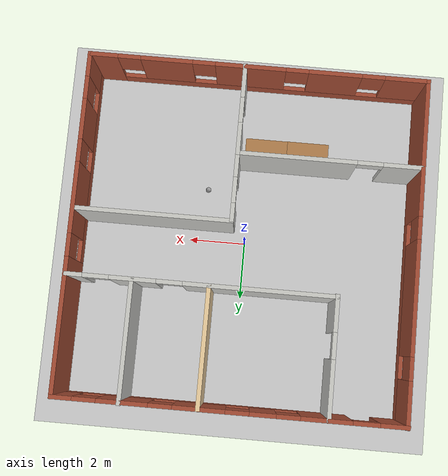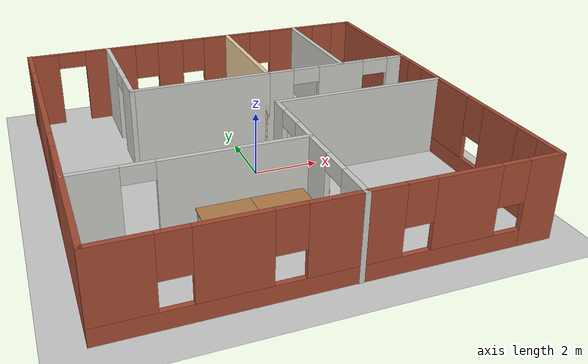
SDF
<sdf version="1.6">
 <world name="office">
  <model name="ground_plane">
   <static>1</static>
   <link name="link">
    <collision name="collision">
     <geometry><plane><normal>0 0 1</normal><size>100 100</size></plane></geometry>
     <surface><friction><ode><mu>100</mu><mu2>50</mu2></ode></friction></surface>
    </collision>
    <visual name="visual">
     <cast_shadows>0</cast_shadows>
     <geometry><plane><normal>0 0 1</normal><size>100 100</size></plane></geometry>
     <material>
      <script><uri>file://media/materials/scripts/gazebo.material</uri><name>Gazebo/Grey</name></script>
     </material>
    </visual>
   </link>
  </model>
  <model name="building">
   <pose>-0.00035 0.007797 0 0 -0 0</pose>
   <link name="Wall_0">
    <pose>-5.91755 0.003133 0 0 -0 1.5708</pose>
    <visual name="Wall_0_Visual_0">
     <pose>-3.58906 0 1.25 0 -0 0</pose>
     <geometry><box><size>4.82188 0.15 2.5</size></box></geometry>
     <material>
      <script><uri>file://media/materials/scripts/gazebo.material</uri><name>Gazebo/Bricks</name></script>
      <ambient>1 1 1 1</ambient>
     </material>
     <meta><layer>0</layer></meta>
    </visual>
    <collision name="Wall_0_Collision_0">
     <geometry><box><size>4.82188 0.15 2.5</size></box></geometry>
     <pose>-3.58906 0 1.25 0 -0 0</pose>
    </collision>
    <visual name="Wall_0_Visual_1">
     <pose>2.41094 0 0.25 0 -0 0</pose>
     <geometry><box><size>7.17812 0.15 0.5</size></box></geometry>
     <material>
      <script><uri>file://media/materials/scripts/gazebo.material</uri><name>Gazebo/Bricks</name></script>
      <ambient>1 1 1 1</ambient>
     </material>
     <meta><layer>0</layer></meta>
    </visual>
    <collision name="Wall_0_Collision_1">
     <geometry><box><size>7.17812 0.15 0.5</size></box></geometry>
     <pose>2.41094 0 0.25 0 -0 0</pose>
    </collision>
    <visual name="Wall_0_Visual_2">
     <pose>1.60287 0 1.5 0 -0 0</pose>
     <geometry><box><size>3.96196 0.15 2</size></box></geometry>
     <material>
      <script><uri>file://media/materials/scripts/gazebo.material</uri><name>Gazebo/Bricks</name></script>
      <ambient>1 1 1 1</ambient>
     </material>
     <meta><layer>0</layer></meta>
    </visual>
    <collision name="Wall_0_Collision_2">
     <geometry><box><size>3.96196 0.15 2</size></box></geometry>
     <pose>1.60287 0 1.5 0 -0 0</pose>
    </collision>
    <visual name="Wall_0_Visual_3">
     <pose>5.19192 0 1.5 0 -0 0</pose>
     <geometry><box><size>1.61615 0.15 2</size></box></geometry>
     <material>
      <script><uri>file://media/materials/scripts/gazebo.material</uri><name>Gazebo/Bricks</name></script>
      <ambient>1 1 1 1</ambient>
     </material>
     <meta><layer>0</layer></meta>
    </visual>
    <collision name="Wall_0_Collision_3">
     <geometry><box><size>1.61615 0.15 2</size></box></geometry>
     <pose>5.19192 0 1.5 0 -0 0</pose>
    </collision>
    <visual name="Wall_0_Visual_4">
     <pose>-0.778116 0 1.9 0 -0 0</pose>
     <geometry><box><size>0.8 0.15 1.2</size></box></geometry>
     <material>
      <script><uri>file://media/materials/scripts/gazebo.material</uri><name>Gazebo/Bricks</name></script>
      <ambient>1 1 1 1</ambient>
     </material>
     <meta><layer>0</layer></meta>
    </visual>
    <collision name="Wall_0_Collision_4">
     <geometry><box><size>0.8 0.15 1.2</size></box></geometry>
     <pose>-0.778116 0 1.9 0 -0 0</pose>
    </collision>
    <visual name="Wall_0_Visual_5">
     <pose>3.98385 0 1.9 0 -0 0</pose>
     <geometry><box><size>0.8 0.15 1.2</size></box></geometry>
     <material>
      <script><uri>file://media/materials/scripts/gazebo.material</uri><name>Gazebo/Bricks</name></script>
      <ambient>1 1 1 1</ambient>
     </material>
     <meta><layer>0</layer></meta>
    </visual>
    <collision name="Wall_0_Collision_5">
     <geometry><box><size>0.8 0.15 1.2</size></box></geometry>
     <pose>3.98385 0 1.9 0 -0 0</pose>
    </collision>
   </link>
   <link name="Wall_10">
    <collision name="Wall_10_Collision">
     <geometry><box><size>4.48462 0.15 2.5</size></box></geometry>
     <pose>0 0 1.25 0 -0 0</pose>
    </collision>
    <visual name="Wall_10_Visual">
     <pose>0 0 1.25 0 -0 0</pose>
     <geometry><box><size>4.48462 0.15 2.5</size></box></geometry>
     <material>
      <script><uri>file://media/materials/scripts/gazebo.material</uri><name>Gazebo/CeilingTiled</name></script>
      <ambient>0.921569 0.807843 0.615686 1</ambient>
     </material>
     <meta><layer>0</layer></meta>
    </visual>
    <pose>-1.11979 1.80988 0 0 -0 0</pose>
   </link>
   <link name="Wall_11">
    <collision name="Wall_11_Collision">
     <geometry><box><size>4.25 0.15 2.5</size></box></geometry>
     <pose>0 0 1.25 0 -0 0</pose>
    </collision>
    <visual name="Wall_11_Visual">
     <pose>0 0 1.25 0 -0 0</pose>
     <geometry><box><size>4.25 0.15 2.5</size></box></geometry>
     <material>
      <script><uri>file://media/materials/scripts/gazebo.material</uri><name>Gazebo/Grey</name></script>
      <ambient>0.921569 0.807843 0.615686 1</ambient>
     </material>
     <meta><layer>0</layer></meta>
    </visual>
    <pose>1.04751 3.85988 0 0 -0 1.5708</pose>
   </link>
   <link name="Wall_15">
    <pose>3.47252 1.80988 0 0 -0 0</pose>
    <visual name="Wall_15_Visual_0">
     <pose>-2.01342 0 1.25 0 -0 0</pose>
     <geometry><box><size>0.973156 0.15 2.5</size></box></geometry>
     <material>
      <script><uri>file://media/materials/scripts/gazebo.material</uri><name>Gazebo/CeilingTiled</name></script>
      <ambient>0.996078 0.47451 0.0196078 1</ambient>
     </material>
     <meta><layer>0</layer></meta>
    </visual>
    <collision name="Wall_15_Collision_0">
     <geometry><box><size>0.973156 0.15 2.5</size></box></geometry>
     <pose>-2.01342 0 1.25 0 -0 0</pose>
    </collision>
    <visual name="Wall_15_Visual_1">
     <pose>0.174229 0 1.25 0 -0 0</pose>
     <geometry><box><size>1.60215 0.15 2.5</size></box></geometry>
     <material>
      <script><uri>file://media/materials/scripts/gazebo.material</uri><name>Gazebo/CeilingTiled</name></script>
      <ambient>0.996078 0.47451 0.0196078 1</ambient>
     </material>
     <meta><layer>0</layer></meta>
    </visual>
    <collision name="Wall_15_Collision_1">
     <geometry><box><size>1.60215 0.15 2.5</size></box></geometry>
     <pose>0.174229 0 1.25 0 -0 0</pose>
    </collision>
    <visual name="Wall_15_Visual_2">
     <pose>2.18765 0 1.25 0 -0 0</pose>
     <geometry><box><size>0.624697 0.15 2.5</size></box></geometry>
     <material>
      <script><uri>file://media/materials/scripts/gazebo.material</uri><name>Gazebo/CeilingTiled</name></script>
      <ambient>0.996078 0.47451 0.0196078 1</ambient>
     </material>
     <meta><layer>0</layer></meta>
    </visual>
    <collision name="Wall_15_Collision_2">
     <geometry><box><size>0.624697 0.15 2.5</size></box></geometry>
     <pose>2.18765 0 1.25 0 -0 0</pose>
    </collision>
    <visual name="Wall_15_Visual_3">
     <pose>-1.07684 0 2.25 0 -0 0</pose>
     <geometry><box><size>0.9 0.15 0.5</size></box></geometry>
     <material>
      <script><uri>file://media/materials/scripts/gazebo.material</uri><name>Gazebo/CeilingTiled</name></script>
      <ambient>0.996078 0.47451 0.0196078 1</ambient>
     </material>
     <meta><layer>0</layer></meta>
    </visual>
    <collision name="Wall_15_Collision_3">
     <geometry><box><size>0.9 0.15 0.5</size></box></geometry>
     <pose>-1.07684 0 2.25 0 -0 0</pose>
    </collision>
    <visual name="Wall_15_Visual_4">
     <pose>1.4253 0 2.25 0 -0 0</pose>
     <geometry><box><size>0.9 0.15 0.5</size></box></geometry>
     <material>
      <script><uri>file://media/materials/scripts/gazebo.material</uri><name>Gazebo/CeilingTiled</name></script>
      <ambient>0.996078 0.47451 0.0196078 1</ambient>
     </material>
     <meta><layer>0</layer></meta>
    </visual>
    <collision name="Wall_15_Collision_4">
     <geometry><box><size>0.9 0.15 0.5</size></box></geometry>
     <pose>1.4253 0 2.25 0 -0 0</pose>
    </collision>
   </link>
   <link name="Wall_17">
    <collision name="Wall_17_Collision">
     <geometry><box><size>4.25 0.15 2.5</size></box></geometry>
     <pose>0 0 1.25 0 -0 0</pose>
    </collision>
    <visual name="Wall_17_Visual">
     <pose>0 0 1.25 0 -0 0</pose>
     <geometry><box><size>4.25 0.15 2.5</size></box></geometry>
     <material>
      <script><uri>file://media/materials/scripts/gazebo.material</uri><name>Gazebo/CeilingTiled</name></script>
      <ambient>0.996078 0.47451 0.0196078 1</ambient>
     </material>
     <meta><layer>0</layer></meta>
    </visual>
    <pose>3.6718 3.89596 0 0 0 -1.5708</pose>
   </link>
   <link name="Wall_2">
    <pose>0 5.91836 0 0 -0 0.000595</pose>
    <visual name="Wall_2_Visual_0">
     <pose>-5.50579 0 1.25 0 -0 0</pose>
     <geometry><box><size>1.00011 0.15 2.5</size></box></geometry>
     <material>
      <script><uri>file://media/materials/scripts/gazebo.material</uri><name>Gazebo/Bricks</name></script>
      <ambient>0.921569 0.807843 0.615686 1</ambient>
     </material>
     <meta><layer>0</layer></meta>
    </visual>
    <collision name="Wall_2_Collision_0">
     <geometry><box><size>1.00011 0.15 2.5</size></box></geometry>
     <pose>-5.50579 0 1.25 0 -0 0</pose>
    </collision>
    <visual name="Wall_2_Visual_1">
     <pose>-3.235 0 1.25 0 -0 0</pose>
     <geometry><box><size>1.74147 0.15 2.5</size></box></geometry>
     <material>
      <script><uri>file://media/materials/scripts/gazebo.material</uri><name>Gazebo/Bricks</name></script>
      <ambient>0.921569 0.807843 0.615686 1</ambient>
     </material>
     <meta><layer>0</layer></meta>
    </visual>
    <collision name="Wall_2_Collision_1">
     <geometry><box><size>1.74147 0.15 2.5</size></box></geometry>
     <pose>-3.235 0 1.25 0 -0 0</pose>
    </collision>
    <visual name="Wall_2_Visual_2">
     <pose>1.82079 0 0.25 0 -0 0</pose>
     <geometry><box><size>8.37012 0.15 0.5</size></box></geometry>
     <material>
      <script><uri>file://media/materials/scripts/gazebo.material</uri><name>Gazebo/Bricks</name></script>
      <ambient>0.921569 0.807843 0.615686 1</ambient>
     </material>
     <meta><layer>0</layer></meta>
    </visual>
    <collision name="Wall_2_Collision_2">
     <geometry><box><size>8.37012 0.15 0.5</size></box></geometry>
     <pose>1.82079 0 0.25 0 -0 0</pose>
    </collision>
    <visual name="Wall_2_Visual_3">
     <pose>-1.1134 0 1.5 0 -0 0</pose>
     <geometry><box><size>0.901735 0.15 2</size></box></geometry>
     <material>
      <script><uri>file://media/materials/scripts/gazebo.material</uri><name>Gazebo/Bricks</name></script>
      <ambient>0.921569 0.807843 0.615686 1</ambient>
     </material>
     <meta><layer>0</layer></meta>
    </visual>
    <collision name="Wall_2_Collision_3">
     <geometry><box><size>0.901735 0.15 2</size></box></geometry>
     <pose>-1.1134 0 1.5 0 -0 0</pose>
    </collision>
    <visual name="Wall_2_Visual_4">
     <pose>1.02146 0 1.5 0 -0 0</pose>
     <geometry><box><size>1.76798 0.15 2</size></box></geometry>
     <material>
      <script><uri>file://media/materials/scripts/gazebo.material</uri><name>Gazebo/Bricks</name></script>
      <ambient>0.921569 0.807843 0.615686 1</ambient>
     </material>
     <meta><layer>0</layer></meta>
    </visual>
    <collision name="Wall_2_Collision_4">
     <geometry><box><size>1.76798 0.15 2</size></box></geometry>
     <pose>1.02146 0 1.5 0 -0 0</pose>
    </collision>
    <visual name="Wall_2_Visual_5">
     <pose>3.57391 0 1.5 0 -0 0</pose>
     <geometry><box><size>1.73691 0.15 2</size></box></geometry>
     <material>
      <script><uri>file://media/materials/scripts/gazebo.material</uri><name>Gazebo/Bricks</name></script>
      <ambient>0.921569 0.807843 0.615686 1</ambient>
     </material>
     <meta><layer>0</layer></meta>
    </visual>
    <collision name="Wall_2_Collision_5">
     <geometry><box><size>1.73691 0.15 2</size></box></geometry>
     <pose>3.57391 0 1.5 0 -0 0</pose>
    </collision>
    <visual name="Wall_2_Visual_6">
     <pose>5.62411 0 1.5 0 -0 0</pose>
     <geometry><box><size>0.763489 0.15 2</size></box></geometry>
     <material>
      <script><uri>file://media/materials/scripts/gazebo.material</uri><name>Gazebo/Bricks</name></script>
      <ambient>0.921569 0.807843 0.615686 1</ambient>
     </material>
     <meta><layer>0</layer></meta>
    </visual>
    <collision name="Wall_2_Collision_6">
     <geometry><box><size>0.763489 0.15 2</size></box></geometry>
     <pose>5.62411 0 1.5 0 -0 0</pose>
    </collision>
    <visual name="Wall_2_Visual_7">
     <pose>-1.96426 0 1.9 0 -0 0</pose>
     <geometry><box><size>0.8 0.15 1.2</size></box></geometry>
     <material>
      <script><uri>file://media/materials/scripts/gazebo.material</uri><name>Gazebo/Bricks</name></script>
      <ambient>0.921569 0.807843 0.615686 1</ambient>
     </material>
     <meta><layer>0</layer></meta>
    </visual>
    <collision name="Wall_2_Collision_7">
     <geometry><box><size>0.8 0.15 1.2</size></box></geometry>
     <pose>-1.96426 0 1.9 0 -0 0</pose>
    </collision>
    <visual name="Wall_2_Visual_8">
     <pose>-0.26253 0 1.9 0 -0 0</pose>
     <geometry><box><size>0.8 0.15 1.2</size></box></geometry>
     <material>
      <script><uri>file://media/materials/scripts/gazebo.material</uri><name>Gazebo/Bricks</name></script>
      <ambient>0.921569 0.807843 0.615686 1</ambient>
     </material>
     <meta><layer>0</layer></meta>
    </visual>
    <collision name="Wall_2_Collision_8">
     <geometry><box><size>0.8 0.15 1.2</size></box></geometry>
     <pose>-0.26253 0 1.9 0 -0 0</pose>
    </collision>
    <visual name="Wall_2_Visual_9">
     <pose>2.30545 0 1.9 0 -0 0</pose>
     <geometry><box><size>0.8 0.15 1.2</size></box></geometry>
     <material>
      <script><uri>file://media/materials/scripts/gazebo.material</uri><name>Gazebo/Bricks</name></script>
      <ambient>0.921569 0.807843 0.615686 1</ambient>
     </material>
     <meta><layer>0</layer></meta>
    </visual>
    <collision name="Wall_2_Collision_9">
     <geometry><box><size>0.8 0.15 1.2</size></box></geometry>
     <pose>2.30545 0 1.9 0 -0 0</pose>
    </collision>
    <visual name="Wall_2_Visual_10">
     <pose>4.84236 0 1.9 0 -0 0</pose>
     <geometry><box><size>0.8 0.15 1.2</size></box></geometry>
     <material>
      <script><uri>file://media/materials/scripts/gazebo.material</uri><name>Gazebo/Bricks</name></script>
      <ambient>0.921569 0.807843 0.615686 1</ambient>
     </material>
     <meta><layer>0</layer></meta>
    </visual>
    <collision name="Wall_2_Collision_10">
     <geometry><box><size>0.8 0.15 1.2</size></box></geometry>
     <pose>4.84236 0 1.9 0 -0 0</pose>
    </collision>
    <visual name="Wall_2_Visual_11">
     <pose>-4.55574 0 2.25 0 -0 0</pose>
     <geometry><box><size>0.9 0.15 0.5</size></box></geometry>
     <material>
      <script><uri>file://media/materials/scripts/gazebo.material</uri><name>Gazebo/Bricks</name></script>
      <ambient>0.921569 0.807843 0.615686 1</ambient>
     </material>
     <meta><layer>0</layer></meta>
    </visual>
    <collision name="Wall_2_Collision_11">
     <geometry><box><size>0.9 0.15 0.5</size></box></geometry>
     <pose>-4.55574 0 2.25 0 -0 0</pose>
    </collision>
   </link>
   <link name="Wall_20">
    <pose>-2.69192 -2.84596 0 0 -0 0</pose>
    <visual name="Wall_20_Visual_0">
     <pose>-2.55329 0 1.25 0 -0 0</pose>
     <geometry><box><size>1.39341 0.15 2.5</size></box></geometry>
     <material>
      <script><uri>file://media/materials/scripts/gazebo.material</uri><name>Gazebo/CeilingTiled</name></script>
      <ambient>1 0.764706 0.305882 1</ambient>
     </material>
     <meta><layer>0</layer></meta>
    </visual>
    <collision name="Wall_20_Collision_0">
     <geometry><box><size>1.39341 0.15 2.5</size></box></geometry>
     <pose>-2.55329 0 1.25 0 -0 0</pose>
    </collision>
    <visual name="Wall_20_Visual_1">
     <pose>1.14671 0 1.25 0 -0 0</pose>
     <geometry><box><size>4.20659 0.15 2.5</size></box></geometry>
     <material>
      <script><uri>file://media/materials/scripts/gazebo.material</uri><name>Gazebo/CeilingTiled</name></script>
      <ambient>1 0.764706 0.305882 1</ambient>
     </material>
     <meta><layer>0</layer></meta>
    </visual>
    <collision name="Wall_20_Collision_1">
     <geometry><box><size>4.20659 0.15 2.5</size></box></geometry>
     <pose>1.14671 0 1.25 0 -0 0</pose>
    </collision>
    <visual name="Wall_20_Visual_2">
     <pose>-1.40659 0 2.25 0 -0 0</pose>
     <geometry><box><size>0.9 0.15 0.5</size></box></geometry>
     <material>
      <script><uri>file://media/materials/scripts/gazebo.material</uri><name>Gazebo/CeilingTiled</name></script>
      <ambient>1 0.764706 0.305882 1</ambient>
     </material>
     <meta><layer>0</layer></meta>
    </visual>
    <collision name="Wall_20_Collision_2">
     <geometry><box><size>0.9 0.15 0.5</size></box></geometry>
     <pose>-1.40659 0 2.25 0 -0 0</pose>
    </collision>
   </link>
   <link name="Wall_21">
    <pose>0.483078 -4.39596 0 0 0 -1.5708</pose>
    <visual name="Wall_21_Visual_0">
     <pose>-1.05225 0 1.25 0 -0 0</pose>
     <geometry><box><size>1.14549 0.15 2.5</size></box></geometry>
     <material>
      <script><uri>file://media/materials/scripts/gazebo.material</uri><name>Gazebo/CeilingTiled</name></script>
      <ambient>0.435294 0.796078 0.67451 1</ambient>
     </material>
     <meta><layer>0</layer></meta>
    </visual>
    <collision name="Wall_21_Collision_0">
     <geometry><box><size>1.14549 0.15 2.5</size></box></geometry>
     <pose>-1.05225 0 1.25 0 -0 0</pose>
    </collision>
    <visual name="Wall_21_Visual_1">
     <pose>1.02275 0 1.25 0 -0 0</pose>
     <geometry><box><size>1.20451 0.15 2.5</size></box></geometry>
     <material>
      <script><uri>file://media/materials/scripts/gazebo.material</uri><name>Gazebo/CeilingTiled</name></script>
      <ambient>0.435294 0.796078 0.67451 1</ambient>
     </material>
     <meta><layer>0</layer></meta>
    </visual>
    <collision name="Wall_21_Collision_1">
     <geometry><box><size>1.20451 0.15 2.5</size></box></geometry>
     <pose>1.02275 0 1.25 0 -0 0</pose>
    </collision>
    <visual name="Wall_21_Visual_2">
     <pose>-0.029508 0 2.25 0 -0 0</pose>
     <geometry><box><size>0.9 0.15 0.5</size></box></geometry>
     <material>
      <script><uri>file://media/materials/scripts/gazebo.material</uri><name>Gazebo/CeilingTiled</name></script>
      <ambient>0.435294 0.796078 0.67451 1</ambient>
     </material>
     <meta><layer>0</layer></meta>
    </visual>
    <collision name="Wall_21_Collision_2">
     <geometry><box><size>0.9 0.15 0.5</size></box></geometry>
     <pose>-0.029508 0 2.25 0 -0 0</pose>
    </collision>
   </link>
   <link name="Wall_23">
    <collision name="Wall_23_Collision">
     <geometry><box><size>5.5 0.15 2.5</size></box></geometry>
     <pose>0 0 1.25 0 -0 0</pose>
    </collision>
    <visual name="Wall_23_Visual">
     <pose>0 0 1.25 0 -0 0</pose>
     <geometry><box><size>5.5 0.15 2.5</size></box></geometry>
     <material>
      <script><uri>file://media/materials/scripts/gazebo.material</uri><name>Gazebo/CeilingTiled</name></script>
      <ambient>0.435294 0.796078 0.67451 1</ambient>
     </material>
     <meta><layer>0</layer></meta>
    </visual>
    <pose>3.17532 -0.459711 0 0 -0 3.14159</pose>
   </link>
   <link name="Wall_25">
    <pose>0.483078 -1.67096 0 0 -0 1.5708</pose>
    <visual name="Wall_25_Visual_0">
     <pose>-0.782101 0 1.25 0 -0 0</pose>
     <geometry><box><size>0.935797 0.15 2.5</size></box></geometry>
     <material>
      <script><uri>file://media/materials/scripts/gazebo.material</uri><name>Gazebo/CeilingTiled</name></script>
      <ambient>0.435294 0.796078 0.67451 1</ambient>
     </material>
     <meta><layer>0</layer></meta>
    </visual>
    <collision name="Wall_25_Collision_0">
     <geometry><box><size>0.935797 0.15 2.5</size></box></geometry>
     <pose>-0.782101 0 1.25 0 -0 0</pose>
    </collision>
    <visual name="Wall_25_Visual_1">
     <pose>0.917899 0 1.25 0 -0 0</pose>
     <geometry><box><size>0.664203 0.15 2.5</size></box></geometry>
     <material>
      <script><uri>file://media/materials/scripts/gazebo.material</uri><name>Gazebo/CeilingTiled</name></script>
      <ambient>0.435294 0.796078 0.67451 1</ambient>
     </material>
     <meta><layer>0</layer></meta>
    </visual>
    <collision name="Wall_25_Collision_1">
     <geometry><box><size>0.664203 0.15 2.5</size></box></geometry>
     <pose>0.917899 0 1.25 0 -0 0</pose>
    </collision>
    <visual name="Wall_25_Visual_2">
     <pose>0.135797 0 2.25 0 -0 0</pose>
     <geometry><box><size>0.9 0.15 0.5</size></box></geometry>
     <material>
      <script><uri>file://media/materials/scripts/gazebo.material</uri><name>Gazebo/CeilingTiled</name></script>
      <ambient>0.435294 0.796078 0.67451 1</ambient>
     </material>
     <meta><layer>0</layer></meta>
    </visual>
    <collision name="Wall_25_Collision_2">
     <geometry><box><size>0.9 0.15 0.5</size></box></geometry>
     <pose>0.135797 0 2.25 0 -0 0</pose>
    </collision>
   </link>
   <link name="Wall_3">
    <pose>5.93085 -0.003114 0 0 0 -1.5708</pose>
    <visual name="Wall_3_Visual_0">
     <pose>-3.61577 0 1.25 0 -0 0</pose>
     <geometry><box><size>4.76845 0.15 2.5</size></box></geometry>
     <material>
      <script><uri>file://media/materials/scripts/gazebo.material</uri><name>Gazebo/Bricks</name></script>
      <ambient>1 1 1 1</ambient>
     </material>
     <meta><layer>0</layer></meta>
    </visual>
    <collision name="Wall_3_Collision_0">
     <geometry><box><size>4.76845 0.15 2.5</size></box></geometry>
     <pose>-3.61577 0 1.25 0 -0 0</pose>
    </collision>
    <visual name="Wall_3_Visual_1">
     <pose>2.38423 0 0.25 0 -0 0</pose>
     <geometry><box><size>7.23155 0.15 0.5</size></box></geometry>
     <material>
      <script><uri>file://media/materials/scripts/gazebo.material</uri><name>Gazebo/Bricks</name></script>
      <ambient>1 1 1 1</ambient>
     </material>
     <meta><layer>0</layer></meta>
    </visual>
    <collision name="Wall_3_Collision_1">
     <geometry><box><size>7.23155 0.15 0.5</size></box></geometry>
     <pose>2.38423 0 0.25 0 -0 0</pose>
    </collision>
    <visual name="Wall_3_Visual_2">
     <pose>0.812347 0 1.5 0 -0 0</pose>
     <geometry><box><size>2.48779 0.15 2</size></box></geometry>
     <material>
      <script><uri>file://media/materials/scripts/gazebo.material</uri><name>Gazebo/Bricks</name></script>
      <ambient>1 1 1 1</ambient>
     </material>
     <meta><layer>0</layer></meta>
    </visual>
    <collision name="Wall_3_Collision_2">
     <geometry><box><size>2.48779 0.15 2</size></box></geometry>
     <pose>0.812347 0 1.5 0 -0 0</pose>
    </collision>
    <visual name="Wall_3_Visual_3">
     <pose>3.57916 0 1.5 0 -0 0</pose>
     <geometry><box><size>1.44583 0.15 2</size></box></geometry>
     <material>
      <script><uri>file://media/materials/scripts/gazebo.material</uri><name>Gazebo/Bricks</name></script>
      <ambient>1 1 1 1</ambient>
     </material>
     <meta><layer>0</layer></meta>
    </visual>
    <collision name="Wall_3_Collision_3">
     <geometry><box><size>1.44583 0.15 2</size></box></geometry>
     <pose>3.57916 0 1.5 0 -0 0</pose>
    </collision>
    <visual name="Wall_3_Visual_4">
     <pose>5.55103 0 1.5 0 -0 0</pose>
     <geometry><box><size>0.89793 0.15 2</size></box></geometry>
     <material>
      <script><uri>file://media/materials/scripts/gazebo.material</uri><name>Gazebo/Bricks</name></script>
      <ambient>1 1 1 1</ambient>
     </material>
     <meta><layer>0</layer></meta>
    </visual>
    <collision name="Wall_3_Collision_4">
     <geometry><box><size>0.89793 0.15 2</size></box></geometry>
     <pose>5.55103 0 1.5 0 -0 0</pose>
    </collision>
    <visual name="Wall_3_Visual_5">
     <pose>-0.831546 0 1.9 0 -0 0</pose>
     <geometry><box><size>0.8 0.15 1.2</size></box></geometry>
     <material>
      <script><uri>file://media/materials/scripts/gazebo.material</uri><name>Gazebo/Bricks</name></script>
      <ambient>1 1 1 1</ambient>
     </material>
     <meta><layer>0</layer></meta>
    </visual>
    <collision name="Wall_3_Collision_5">
     <geometry><box><size>0.8 0.15 1.2</size></box></geometry>
     <pose>-0.831546 0 1.9 0 -0 0</pose>
    </collision>
    <visual name="Wall_3_Visual_6">
     <pose>2.45624 0 1.9 0 -0 0</pose>
     <geometry><box><size>0.8 0.15 1.2</size></box></geometry>
     <material>
      <script><uri>file://media/materials/scripts/gazebo.material</uri><name>Gazebo/Bricks</name></script>
      <ambient>1 1 1 1</ambient>
     </material>
     <meta><layer>0</layer></meta>
    </visual>
    <collision name="Wall_3_Collision_6">
     <geometry><box><size>0.8 0.15 1.2</size></box></geometry>
     <pose>2.45624 0 1.9 0 -0 0</pose>
    </collision>
    <visual name="Wall_3_Visual_7">
     <pose>4.70207 0 1.9 0 -0 0</pose>
     <geometry><box><size>0.8 0.15 1.2</size></box></geometry>
     <material>
      <script><uri>file://media/materials/scripts/gazebo.material</uri><name>Gazebo/Bricks</name></script>
      <ambient>1 1 1 1</ambient>
     </material>
     <meta><layer>0</layer></meta>
    </visual>
    <collision name="Wall_3_Collision_7">
     <geometry><box><size>0.8 0.15 1.2</size></box></geometry>
     <pose>4.70207 0 1.9 0 -0 0</pose>
    </collision>
   </link>
   <link name="Wall_4">
    <pose>0.00585 -5.92811 0 0 -0 3.14159</pose>
    <visual name="Wall_4_Visual_0">
     <pose>-5.4743 0 1.25 0 -0 0</pose>
     <geometry><box><size>1.05139 0.15 2.5</size></box></geometry>
     <material>
      <script><uri>file://media/materials/scripts/gazebo.material</uri><name>Gazebo/Bricks</name></script>
      <ambient>1 1 1 1</ambient>
     </material>
     <meta><layer>0</layer></meta>
    </visual>
    <collision name="Wall_4_Collision_0">
     <geometry><box><size>1.05139 0.15 2.5</size></box></geometry>
     <pose>-5.4743 0 1.25 0 -0 0</pose>
    </collision>
    <visual name="Wall_4_Visual_1">
     <pose>0.525697 0 0.25 0 -0 0</pose>
     <geometry><box><size>10.9486 0.15 0.5</size></box></geometry>
     <material>
      <script><uri>file://media/materials/scripts/gazebo.material</uri><name>Gazebo/Bricks</name></script>
      <ambient>1 1 1 1</ambient>
     </material>
     <meta><layer>0</layer></meta>
    </visual>
    <collision name="Wall_4_Collision_1">
     <geometry><box><size>10.9486 0.15 0.5</size></box></geometry>
     <pose>0.525697 0 0.25 0 -0 0</pose>
    </collision>
    <visual name="Wall_4_Visual_2">
     <pose>-3.23854 0 1.5 0 -0 0</pose>
     <geometry><box><size>1.82013 0.15 2</size></box></geometry>
     <material>
      <script><uri>file://media/materials/scripts/gazebo.material</uri><name>Gazebo/Bricks</name></script>
      <ambient>1 1 1 1</ambient>
     </material>
     <meta><layer>0</layer></meta>
    </visual>
    <collision name="Wall_4_Collision_2">
     <geometry><box><size>1.82013 0.15 2</size></box></geometry>
     <pose>-3.23854 0 1.5 0 -0 0</pose>
    </collision>
    <visual name="Wall_4_Visual_3">
     <pose>-0.290889 0 1.5 0 -0 0</pose>
     <geometry><box><size>2.47517 0.15 2</size></box></geometry>
     <material>
      <script><uri>file://media/materials/scripts/gazebo.material</uri><name>Gazebo/Bricks</name></script>
      <ambient>1 1 1 1</ambient>
     </material>
     <meta><layer>0</layer></meta>
    </visual>
    <collision name="Wall_4_Collision_3">
     <geometry><box><size>2.47517 0.15 2</size></box></geometry>
     <pose>-0.290889 0 1.5 0 -0 0</pose>
    </collision>
    <visual name="Wall_4_Visual_4">
     <pose>2.68016 0 1.5 0 -0 0</pose>
     <geometry><box><size>1.86692 0.15 2</size></box></geometry>
     <material>
      <script><uri>file://media/materials/scripts/gazebo.material</uri><name>Gazebo/Bricks</name></script>
      <ambient>1 1 1 1</ambient>
     </material>
     <meta><layer>0</layer></meta>
    </visual>
    <collision name="Wall_4_Collision_4">
     <geometry><box><size>1.86692 0.15 2</size></box></geometry>
     <pose>2.68016 0 1.5 0 -0 0</pose>
    </collision>
    <visual name="Wall_4_Visual_5">
     <pose>5.20681 0 1.5 0 -0 0</pose>
     <geometry><box><size>1.58638 0.15 2</size></box></geometry>
     <material>
      <script><uri>file://media/materials/scripts/gazebo.material</uri><name>Gazebo/Bricks</name></script>
      <ambient>1 1 1 1</ambient>
     </material>
     <meta><layer>0</layer></meta>
    </visual>
    <collision name="Wall_4_Collision_5">
     <geometry><box><size>1.58638 0.15 2</size></box></geometry>
     <pose>5.20681 0 1.5 0 -0 0</pose>
    </collision>
    <visual name="Wall_4_Visual_6">
     <pose>-4.54861 0 1.9 0 -0 0</pose>
     <geometry><box><size>0.8 0.15 1.2</size></box></geometry>
     <material>
      <script><uri>file://media/materials/scripts/gazebo.material</uri><name>Gazebo/Bricks</name></script>
      <ambient>1 1 1 1</ambient>
     </material>
     <meta><layer>0</layer></meta>
    </visual>
    <collision name="Wall_4_Collision_6">
     <geometry><box><size>0.8 0.15 1.2</size></box></geometry>
     <pose>-4.54861 0 1.9 0 -0 0</pose>
    </collision>
    <visual name="Wall_4_Visual_7">
     <pose>-1.92847 0 1.9 0 -0 0</pose>
     <geometry><box><size>0.8 0.15 1.2</size></box></geometry>
     <material>
      <script><uri>file://media/materials/scripts/gazebo.material</uri><name>Gazebo/Bricks</name></script>
      <ambient>1 1 1 1</ambient>
     </material>
     <meta><layer>0</layer></meta>
    </visual>
    <collision name="Wall_4_Collision_7">
     <geometry><box><size>0.8 0.15 1.2</size></box></geometry>
     <pose>-1.92847 0 1.9 0 -0 0</pose>
    </collision>
    <visual name="Wall_4_Visual_8">
     <pose>1.34669 0 1.9 0 -0 0</pose>
     <geometry><box><size>0.8 0.15 1.2</size></box></geometry>
     <material>
      <script><uri>file://media/materials/scripts/gazebo.material</uri><name>Gazebo/Bricks</name></script>
      <ambient>1 1 1 1</ambient>
     </material>
     <meta><layer>0</layer></meta>
    </visual>
    <collision name="Wall_4_Collision_8">
     <geometry><box><size>0.8 0.15 1.2</size></box></geometry>
     <pose>1.34669 0 1.9 0 -0 0</pose>
    </collision>
    <visual name="Wall_4_Visual_9">
     <pose>4.01362 0 1.9 0 -0 0</pose>
     <geometry><box><size>0.8 0.15 1.2</size></box></geometry>
     <material>
      <script><uri>file://media/materials/scripts/gazebo.material</uri><name>Gazebo/Bricks</name></script>
      <ambient>1 1 1 1</ambient>
     </material>
     <meta><layer>0</layer></meta>
    </visual>
    <collision name="Wall_4_Collision_9">
     <geometry><box><size>0.8 0.15 1.2</size></box></geometry>
     <pose>4.01362 0 1.9 0 -0 0</pose>
    </collision>
   </link>
   <link name="Wall_6">
    <pose>-3.30684 3.83875 0 0 -0 1.5708</pose>
    <visual name="Wall_6_Visual_0">
     <pose>-1.48317 0 1.25 0 -0 0</pose>
     <geometry><box><size>1.28365 0.15 2.5</size></box></geometry>
     <material>
      <script><uri>file://media/materials/scripts/gazebo.material</uri><name>Gazebo/CeilingTiled</name></script>
      <ambient>0.760784 0.662745 0.627451 1</ambient>
     </material>
     <meta><layer>0</layer></meta>
    </visual>
    <collision name="Wall_6_Collision_0">
     <geometry><box><size>1.28365 0.15 2.5</size></box></geometry>
     <pose>-1.48317 0 1.25 0 -0 0</pose>
    </collision>
    <visual name="Wall_6_Visual_1">
     <pose>1.09183 0 1.25 0 -0 0</pose>
     <geometry><box><size>2.06635 0.15 2.5</size></box></geometry>
     <material>
      <script><uri>file://media/materials/scripts/gazebo.material</uri><name>Gazebo/CeilingTiled</name></script>
      <ambient>0.760784 0.662745 0.627451 1</ambient>
     </material>
     <meta><layer>0</layer></meta>
    </visual>
    <collision name="Wall_6_Collision_1">
     <geometry><box><size>2.06635 0.15 2.5</size></box></geometry>
     <pose>1.09183 0 1.25 0 -0 0</pose>
    </collision>
    <visual name="Wall_6_Visual_2">
     <pose>-0.391348 0 2.25 0 -0 0</pose>
     <geometry><box><size>0.9 0.15 0.5</size></box></geometry>
     <material>
      <script><uri>file://media/materials/scripts/gazebo.material</uri><name>Gazebo/CeilingTiled</name></script>
      <ambient>0.760784 0.662745 0.627451 1</ambient>
     </material>
     <meta><layer>0</layer></meta>
    </visual>
    <collision name="Wall_6_Collision_2">
     <geometry><box><size>0.9 0.15 0.5</size></box></geometry>
     <pose>-0.391348 0 2.25 0 -0 0</pose>
    </collision>
   </link>
   <static>1</static>
  </model>
  <model name="table_1_clone">
   <static>1</static>
   <link name="link">
    <collision name="surface">
     <pose>0 0 1 0 -0 0</pose>
     <geometry><box><size>1.5 0.8 0.03</size></box></geometry>
     <surface><friction><ode><mu>0.6</mu><mu2>0.6</mu2></ode></friction></surface>
    </collision>
    <visual name="visual1">
     <pose>0 0 1 0 -0 0</pose>
     <geometry><box><size>1.5 0.8 0.03</size></box></geometry>
     <material>
      <script><uri>file://media/materials/scripts/gazebo.material</uri><name>Gazebo/Wood</name></script>
     </material>
    </visual>
    <collision name="front_left_leg">
     <pose>0.68 0.38 0.5 0 -0 0</pose>
     <geometry><cylinder><radius>0.02</radius><length>1</length></cylinder></geometry>
    </collision>
    <visual name="front_left_leg">
     <pose>0.68 0.38 0.5 0 -0 0</pose>
     <geometry><cylinder><radius>0.02</radius><length>1</length></cylinder></geometry>
     <material>
      <script><uri>file://media/materials/scripts/gazebo.material</uri><name>Gazebo/Grey</name></script>
     </material>
    </visual>
    <collision name="front_right_leg">
     <pose>0.68 -0.38 0.5 0 -0 0</pose>
     <geometry><cylinder><radius>0.02</radius><length>1</length></cylinder></geometry>
    </collision>
    <visual name="front_right_leg">
     <pose>0.68 -0.38 0.5 0 -0 0</pose>
     <geometry><cylinder><radius>0.02</radius><length>1</length></cylinder></geometry>
     <material>
      <script><uri>file://media/materials/scripts/gazebo.material</uri><name>Gazebo/Grey</name></script>
     </material>
    </visual>
    <collision name="back_right_leg">
     <pose>-0.68 -0.38 0.5 0 -0 0</pose>
     <geometry><cylinder><radius>0.02</radius><length>1</length></cylinder></geometry>
    </collision>
    <visual name="back_right_leg">
     <pose>-0.68 -0.38 0.5 0 -0 0</pose>
     <geometry><cylinder><radius>0.02</radius><length>1</length></cylinder></geometry>
     <material>
      <script><uri>file://media/materials/scripts/gazebo.material</uri><name>Gazebo/Grey</name></script>
     </material>
    </visual>
    <collision name="back_left_leg">
     <pose>-0.68 0.38 0.5 0 -0 0</pose>
     <geometry><cylinder><radius>0.02</radius><length>1</length></cylinder></geometry>
    </collision>
    <visual name="back_left_leg">
     <pose>-0.68 0.38 0.5 0 -0 0</pose>
     <geometry><cylinder><radius>0.02</radius><length>1</length></cylinder></geometry>
     <material>
      <script><uri>file://media/materials/scripts/gazebo.material</uri><name>Gazebo/Grey</name></script>
     </material>
    </visual>
   </link>
   <pose>-0.496007 -3.34114 0 0 -0 0</pose>
  </model>
  <model name="table_1_clone_0">
   <static>1</static>
   <link name="link">
    <collision name="surface">
     <pose>0 0 1 0 -0 0</pose>
     <geometry><box><size>1.5 0.8 0.03</size></box></geometry>
     <surface><friction><ode><mu>0.6</mu><mu2>0.6</mu2></ode></friction></surface>
    </collision>
    <visual name="visual1">
     <pose>0 0 1 0 -0 0</pose>
     <geometry><box><size>1.5 0.8 0.03</size></box></geometry>
     <material>
      <script><uri>file://media/materials/scripts/gazebo.material</uri><name>Gazebo/Wood</name></script>
     </material>
    </visual>
    <collision name="front_left_leg">
     <pose>0.68 0.38 0.5 0 -0 0</pose>
     <geometry><cylinder><radius>0.02</radius><length>1</length></cylinder></geometry>
    </collision>
    <visual name="front_left_leg">
     <pose>0.68 0.38 0.5 0 -0 0</pose>
     <geometry><cylinder><radius>0.02</radius><length>1</length></cylinder></geometry>
     <material>
      <script><uri>file://media/materials/scripts/gazebo.material</uri><name>Gazebo/Grey</name></script>
     </material>
    </visual>
    <collision name="front_right_leg">
     <pose>0.68 -0.38 0.5 0 -0 0</pose>
     <geometry><cylinder><radius>0.02</radius><length>1</length></cylinder></geometry>
    </collision>
    <visual name="front_right_leg">
     <pose>0.68 -0.38 0.5 0 -0 0</pose>
     <geometry><cylinder><radius>0.02</radius><length>1</length></cylinder></geometry>
     <material>
      <script><uri>file://media/materials/scripts/gazebo.material</uri><name>Gazebo/Grey</name></script>
     </material>
    </visual>
    <collision name="back_right_leg">
     <pose>-0.68 -0.38 0.5 0 -0 0</pose>
     <geometry><cylinder><radius>0.02</radius><length>1</length></cylinder></geometry>
    </collision>
    <visual name="back_right_leg">
     <pose>-0.68 -0.38 0.5 0 -0 0</pose>
     <geometry><cylinder><radius>0.02</radius><length>1</length></cylinder></geometry>
     <material>
      <script><uri>file://media/materials/scripts/gazebo.material</uri><name>Gazebo/Grey</name></script>
     </material>
    </visual>
    <collision name="back_left_leg">
     <pose>-0.68 0.38 0.5 0 -0 0</pose>
     <geometry><cylinder><radius>0.02</radius><length>1</length></cylinder></geometry>
    </collision>
    <visual name="back_left_leg">
     <pose>-0.68 0.38 0.5 0 -0 0</pose>
     <geometry><cylinder><radius>0.02</radius><length>1</length></cylinder></geometry>
     <material>
      <script><uri>file://media/materials/scripts/gazebo.material</uri><name>Gazebo/Grey</name></script>
     </material>
    </visual>
   </link>
   <pose>-1.99053 -3.34788 0 0 -0 0</pose>
  </model>
  <model name="my_ball">
   <link name="link_0">
    <inertial>
     <mass>1</mass>
     <inertia><ixx>0.1</ixx><ixy>0</ixy><ixz>0</ixz><iyy>0.1</iyy><iyz>0</iyz><izz>0.1</izz></inertia>
    </inertial>
    <visual name="visual">
     <geometry><sphere><radius>0.1</radius></sphere></geometry>
     <material>
      <lighting>1</lighting>
      <script><uri>file://media/materials/scripts/gazebo.material</uri><name>Gazebo/Grey</name></script>
      <shader type="pixel"><normal_map>__default__</normal_map></shader>
      <ambient>1 1 1 1</ambient>
      <diffuse>1 1 1 1</diffuse>
      <specular>1 1 1 1</specular>
      <emissive>1 1 1 1</emissive>
     </material>
    </visual>
    <collision name="collision">
     <geometry><sphere><radius>0.1</radius></sphere></geometry>
     <surface>
      <friction>
       <ode><mu>1</mu><mu2>1</mu2><fdir1>0 0 0</fdir1><slip1>0</slip1><slip2>0</slip2></ode>
       <torsional>
        <coefficient>1</coefficient>
        <patch_radius>0</patch_radius>
        <surface_radius>0</surface_radius>
        <use_patch_radius>1</use_patch_radius>
        <ode><slip>0</slip></ode>
       </torsional>
      </friction>
      <bounce><restitution_coefficient>0</restitution_coefficient><threshold>1e+06</threshold></bounce>
      <contact>
       <collide_without_contact>0</collide_without_contact>
       <collide_without_contact_bitmask>1</collide_without_contact_bitmask>
       <collide_bitmask>1</collide_bitmask>
       <ode>
        <soft_cfm>0</soft_cfm>
        <soft_erp>0.2</soft_erp>
        <kp>1e+13</kp>
        <kd>1</kd>
        <max_vel>0.01</max_vel>
        <min_depth>0</min_depth>
       </ode>
       <bullet>
        <split_impulse>1</split_impulse>
        <split_impulse_penetration_threshold>-0.01</split_impulse_penetration_threshold>
        <soft_cfm>0</soft_cfm>
        <soft_erp>0.2</soft_erp>
        <kp>1e+13</kp>
        <kd>1</kd>
       </bullet>
      </contact>
     </surface>
    </collision>
   </link>
   <static>0</static>
   <pose>1.50095 -1.89843 0.1 0 -0 0</pose>
  </model>
 </world>
</sdf>
